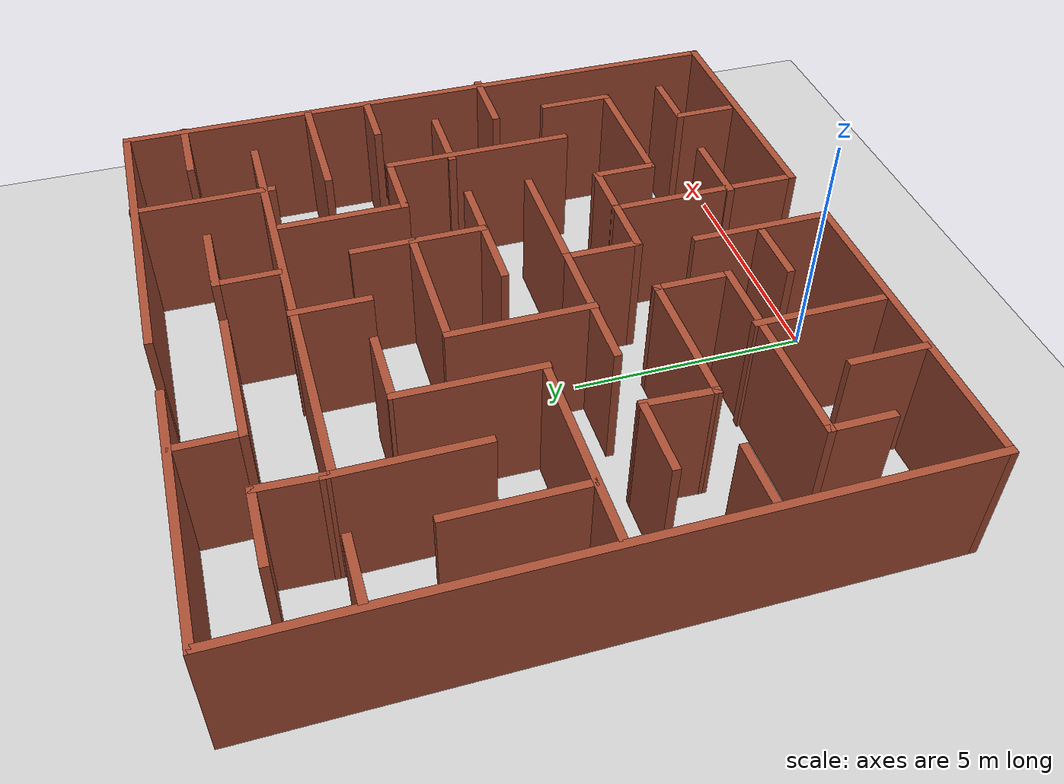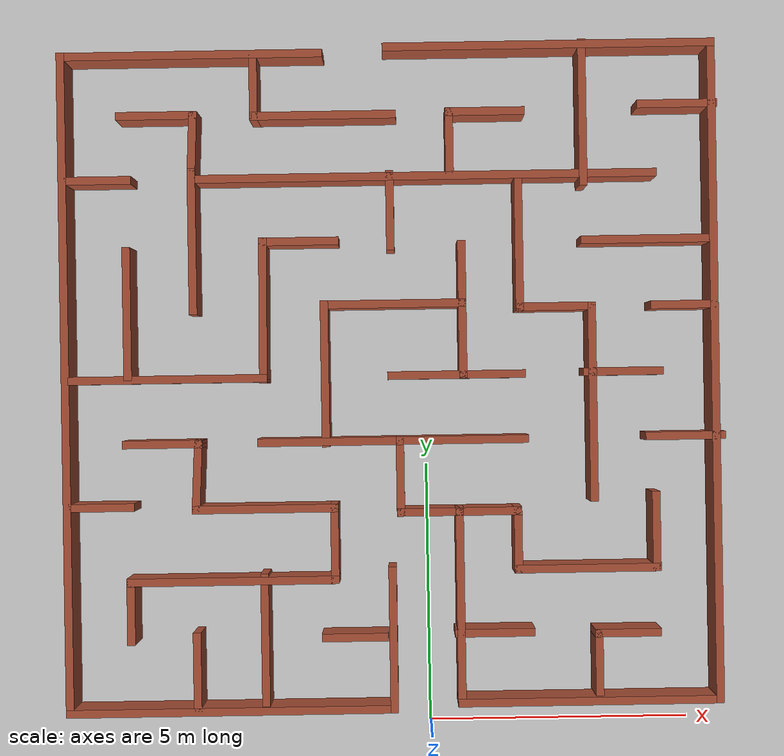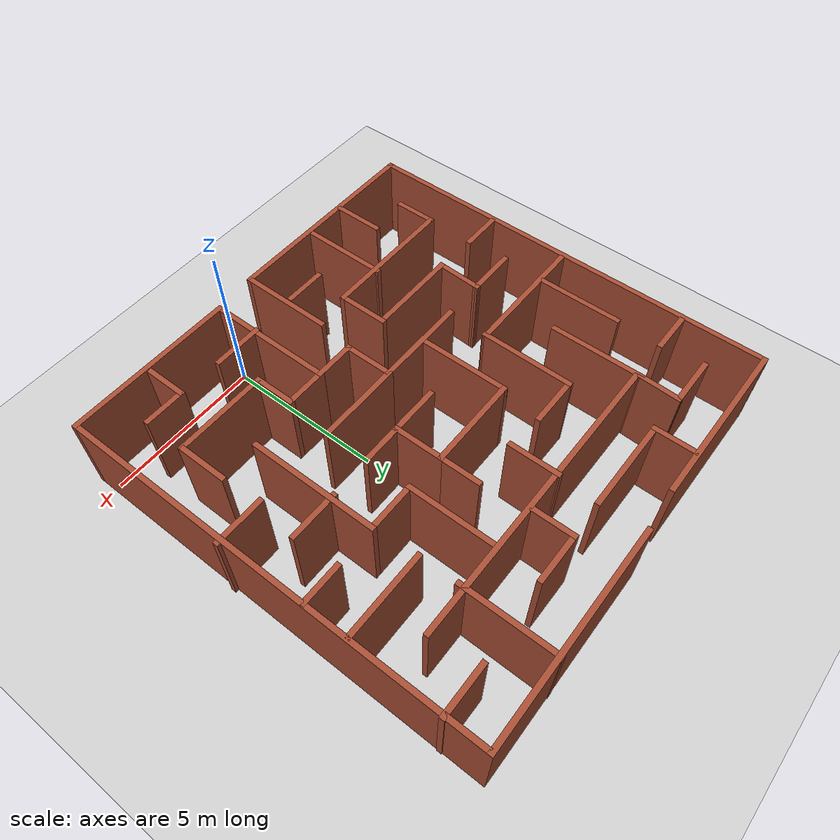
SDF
<sdf version="1.7">
 <world name="maze">
  <light name="sun" type="directional">
   <pose>0 0 10 0 -0 0</pose>
   <diffuse>0.8 0.8 0.8 1</diffuse>
   <specular>0.2 0.2 0.2 1</specular>
   <attenuation>
    <range>1000</range>
    <constant>0.9</constant>
    <linear>0.01</linear>
    <quadratic>0.001</quadratic>
   </attenuation>
   <direction>-0.5 0.1 -0.9</direction>
   <spot><inner_angle>0</inner_angle><outer_angle>0</outer_angle><falloff>0</falloff></spot>
  </light>
  <model name="ground_plane">
   <static>1</static>
   <link name="link">
    <collision name="collision">
     <geometry><plane><normal>0 0 1</normal><size>100 100</size></plane></geometry>
     <surface><friction><ode><mu>100</mu><mu2>50</mu2></ode></friction></surface>
    </collision>
    <visual name="visual">
     <cast_shadows>0</cast_shadows>
     <geometry><plane><normal>0 0 1</normal><size>100 100</size></plane></geometry>
     <material>
      <script><uri>file://media/materials/scripts/gazebo.material</uri><name>Gazebo/Grey</name></script>
     </material>
    </visual>
   </link>
  </model>
  <gravity>0 0 -9.8</gravity>
  <magnetic_field>6e-06 2.3e-05 -4.2e-05</magnetic_field>
  <atmosphere type="adiabatic"/>
  <physics type="ode">
   <max_step_size>0.001</max_step_size>
   <real_time_factor>1</real_time_factor>
   <real_time_update_rate>1000</real_time_update_rate>
  </physics>
  <scene><ambient>0.4 0.4 0.4 1</ambient><background>0.7 0.7 0.7 1</background><shadows>1</shadows></scene>
  <audio><device>default</device></audio>
  <spherical_coordinates>
   <surface_model>EARTH_WGS84</surface_model>
   <latitude_deg>0</latitude_deg>
   <longitude_deg>0</longitude_deg>
   <elevation>0</elevation>
   <heading_deg>0</heading_deg>
  </spherical_coordinates>
  <model name="Maze">
   <pose>-0.631465 6.69394 1.57577 0 -0 0</pose>
   <link name="Wall_1">
    <collision name="Wall_1_Collision">
     <geometry><box><size>6.25 0.15 2.5</size></box></geometry>
     <pose>0 0 1.25 0 -0 0</pose>
    </collision>
    <visual name="Wall_1_Visual">
     <pose>0 0 1.25 0 -0 0</pose>
     <geometry><box><size>6.25 0.15 2.5</size></box></geometry>
     <material>
      <script><uri>file://media/materials/scripts/gazebo.material</uri><name>Gazebo/Bricks</name></script>
      <ambient>1 1 1 1</ambient>
     </material>
     <meta><layer>0</layer></meta>
    </visual>
    <pose>3.01437 6.21424 0 0 -0 0</pose>
   </link>
   <link name="Wall_10">
    <collision name="Wall_10_Collision">
     <geometry><box><size>1.25 0.15 2.5</size></box></geometry>
     <pose>0 0 1.25 0 -0 0</pose>
    </collision>
    <visual name="Wall_10_Visual">
     <pose>0 0 1.25 0 -0 0</pose>
     <geometry><box><size>1.25 0.15 2.5</size></box></geometry>
     <material>
      <script><uri>file://media/materials/scripts/gazebo.material</uri><name>Gazebo/Bricks</name></script>
      <ambient>1 1 1 1</ambient>
     </material>
     <meta><layer>0</layer></meta>
    </visual>
    <pose>-2.54387 5.50241 0 0 -0 -1.5708</pose>
   </link>
   <link name="Wall_11">
    <collision name="Wall_11_Collision">
     <geometry><box><size>2.75 0.15 2.5</size></box></geometry>
     <pose>0 0 1.25 0 -0 0</pose>
    </collision>
    <visual name="Wall_11_Visual">
     <pose>0 0 1.25 0 -0 0</pose>
     <geometry><box><size>2.75 0.15 2.5</size></box></geometry>
     <material>
      <script><uri>file://media/materials/scripts/gazebo.material</uri><name>Gazebo/Bricks</name></script>
      <ambient>1 1 1 1</ambient>
     </material>
     <meta><layer>0</layer></meta>
    </visual>
    <pose>-1.24388 4.95241 0 0 -0 0</pose>
   </link>
   <link name="Wall_13">
    <collision name="Wall_13_Collision">
     <geometry><box><size>1.25 0.15 2.5</size></box></geometry>
     <pose>0 0 1.25 0 -0 0</pose>
    </collision>
    <visual name="Wall_13_Visual">
     <pose>0 0 1.25 0 -0 0</pose>
     <geometry><box><size>1.25 0.15 2.5</size></box></geometry>
     <material>
      <script><uri>file://media/materials/scripts/gazebo.material</uri><name>Gazebo/Bricks</name></script>
      <ambient>1 1 1 1</ambient>
     </material>
     <meta><layer>0</layer></meta>
    </visual>
    <pose>-5.49424 3.7869 0 0 -0 3.14159</pose>
   </link>
   <link name="Wall_17">
    <collision name="Wall_17_Collision">
     <geometry><box><size>1.25 0.15 2.5</size></box></geometry>
     <pose>0 0 1.25 0 -0 0</pose>
    </collision>
    <visual name="Wall_17_Visual">
     <pose>0 0 1.25 0 -0 0</pose>
     <geometry><box><size>1.25 0.15 2.5</size></box></geometry>
     <material>
      <script><uri>file://media/materials/scripts/gazebo.material</uri><name>Gazebo/Bricks</name></script>
      <ambient>1 1 1 1</ambient>
     </material>
     <meta><layer>0</layer></meta>
    </visual>
    <pose>-5.52121 -2.36235 0 0 -0 3.14159</pose>
   </link>
   <link name="Wall_19">
    <collision name="Wall_19_Collision">
     <geometry><box><size>1.5 0.15 2.5</size></box></geometry>
     <pose>0 0 1.25 0 -0 0</pose>
    </collision>
    <visual name="Wall_19_Visual">
     <pose>0 0 1.25 0 -0 0</pose>
     <geometry><box><size>1.5 0.15 2.5</size></box></geometry>
     <material>
      <script><uri>file://media/materials/scripts/gazebo.material</uri><name>Gazebo/Bricks</name></script>
      <ambient>1 1 1 1</ambient>
     </material>
     <meta><layer>0</layer></meta>
    </visual>
    <pose>-3.75754 -5.49165 0 0 -0 -1.5708</pose>
   </link>
   <link name="Wall_2">
    <collision name="Wall_2_Collision">
     <geometry><box><size>12.5 0.15 2.5</size></box></geometry>
     <pose>0 0 1.25 0 -0 0</pose>
    </collision>
    <visual name="Wall_2_Visual">
     <pose>0 0 1.25 0 -0 0</pose>
     <geometry><box><size>12.5 0.15 2.5</size></box></geometry>
     <material>
      <script><uri>file://media/materials/scripts/gazebo.material</uri><name>Gazebo/Bricks</name></script>
      <ambient>1 1 1 1</ambient>
     </material>
     <meta><layer>0</layer></meta>
    </visual>
    <pose>6.06437 0.039235 0 0 -0 -1.5708</pose>
   </link>
   <link name="Wall_21">
    <collision name="Wall_21_Collision">
     <geometry><box><size>1.25 0.15 2.5</size></box></geometry>
     <pose>0 0 1.25 0 -0 0</pose>
    </collision>
    <visual name="Wall_21_Visual">
     <pose>0 0 1.25 0 -0 0</pose>
     <geometry><box><size>1.25 0.15 2.5</size></box></geometry>
     <material>
      <script><uri>file://media/materials/scripts/gazebo.material</uri><name>Gazebo/Bricks</name></script>
      <ambient>1 1 1 1</ambient>
     </material>
     <meta><layer>0</layer></meta>
    </visual>
    <pose>-0.780208 -4.87059 0 0 -0 0</pose>
   </link>
   <link name="Wall_25">
    <collision name="Wall_25_Collision">
     <geometry><box><size>1.25 0.15 2.5</size></box></geometry>
     <pose>0 0 1.25 0 -0 0</pose>
    </collision>
    <visual name="Wall_25_Visual">
     <pose>0 0 1.25 0 -0 0</pose>
     <geometry><box><size>1.25 0.15 2.5</size></box></geometry>
     <material>
      <script><uri>file://media/materials/scripts/gazebo.material</uri><name>Gazebo/Bricks</name></script>
      <ambient>1 1 1 1</ambient>
     </material>
     <meta><layer>0</layer></meta>
    </visual>
    <pose>4.35353 -4.86057 0 0 -0 3.14159</pose>
   </link>
   <link name="Wall_26">
    <collision name="Wall_26_Collision">
     <geometry><box><size>1.25 0.15 2.5</size></box></geometry>
     <pose>0 0 1.25 0 -0 0</pose>
    </collision>
    <visual name="Wall_26_Visual">
     <pose>0 0 1.25 0 -0 0</pose>
     <geometry><box><size>1.25 0.15 2.5</size></box></geometry>
     <material>
      <script><uri>file://media/materials/scripts/gazebo.material</uri><name>Gazebo/Bricks</name></script>
      <ambient>1 1 1 1</ambient>
     </material>
     <meta><layer>0</layer></meta>
    </visual>
    <pose>3.80353 -5.41057 0 0 -0 -1.5708</pose>
   </link>
   <link name="Wall_28">
    <collision name="Wall_28_Collision">
     <geometry><box><size>1.5 0.15 2.5</size></box></geometry>
     <pose>0 0 1.25 0 -0 0</pose>
    </collision>
    <visual name="Wall_28_Visual">
     <pose>0 0 1.25 0 -0 0</pose>
     <geometry><box><size>1.5 0.15 2.5</size></box></geometry>
     <material>
      <script><uri>file://media/materials/scripts/gazebo.material</uri><name>Gazebo/Bricks</name></script>
      <ambient>1 1 1 1</ambient>
     </material>
     <meta><layer>0</layer></meta>
    </visual>
    <pose>5.4876 -1.17201 0 0 -0 3.14159</pose>
   </link>
   <link name="Wall_3">
    <collision name="Wall_3_Collision">
     <geometry><box><size>5 0.15 2.5</size></box></geometry>
     <pose>0 0 1.25 0 -0 0</pose>
    </collision>
    <visual name="Wall_3_Visual">
     <pose>0 0 1.25 0 -0 0</pose>
     <geometry><box><size>5 0.15 2.5</size></box></geometry>
     <material>
      <script><uri>file://media/materials/scripts/gazebo.material</uri><name>Gazebo/Bricks</name></script>
      <ambient>1 1 1 1</ambient>
     </material>
     <meta><layer>0</layer></meta>
    </visual>
    <pose>3.63937 -6.13577 0 0 -0 3.14159</pose>
   </link>
   <link name="Wall_30">
    <collision name="Wall_30_Collision">
     <geometry><box><size>1.25 0.15 2.5</size></box></geometry>
     <pose>0 0 1.25 0 -0 0</pose>
    </collision>
    <visual name="Wall_30_Visual">
     <pose>0 0 1.25 0 -0 0</pose>
     <geometry><box><size>1.25 0.15 2.5</size></box></geometry>
     <material>
      <script><uri>file://media/materials/scripts/gazebo.material</uri><name>Gazebo/Bricks</name></script>
      <ambient>1 1 1 1</ambient>
     </material>
     <meta><layer>0</layer></meta>
    </visual>
    <pose>5.48847 1.29295 0 0 -0 3.14159</pose>
   </link>
   <link name="Wall_32">
    <collision name="Wall_32_Collision">
     <geometry><box><size>2.5 0.15 2.5</size></box></geometry>
     <pose>0 0 1.25 0 -0 0</pose>
    </collision>
    <visual name="Wall_32_Visual">
     <pose>0 0 1.25 0 -0 0</pose>
     <geometry><box><size>2.5 0.15 2.5</size></box></geometry>
     <material>
      <script><uri>file://media/materials/scripts/gazebo.material</uri><name>Gazebo/Bricks</name></script>
      <ambient>1 1 1 1</ambient>
     </material>
     <meta><layer>0</layer></meta>
    </visual>
    <pose>4.828 2.53429 0 0 -0 3.14159</pose>
   </link>
   <link name="Wall_34">
    <collision name="Wall_34_Collision">
     <geometry><box><size>1.5 0.15 2.5</size></box></geometry>
     <pose>0 0 1.25 0 -0 0</pose>
    </collision>
    <visual name="Wall_34_Visual">
     <pose>0 0 1.25 0 -0 0</pose>
     <geometry><box><size>1.5 0.15 2.5</size></box></geometry>
     <material>
      <script><uri>file://media/materials/scripts/gazebo.material</uri><name>Gazebo/Bricks</name></script>
      <ambient>1 1 1 1</ambient>
     </material>
     <meta><layer>0</layer></meta>
    </visual>
    <pose>5.41624 5.07023 0 0 -0 3.14159</pose>
   </link>
   <link name="Wall_36">
    <collision name="Wall_36_Collision">
     <geometry><box><size>2.75 0.15 2.5</size></box></geometry>
     <pose>0 0 1.25 0 -0 0</pose>
    </collision>
    <visual name="Wall_36_Visual">
     <pose>0 0 1.25 0 -0 0</pose>
     <geometry><box><size>2.75 0.15 2.5</size></box></geometry>
     <material>
      <script><uri>file://media/materials/scripts/gazebo.material</uri><name>Gazebo/Bricks</name></script>
      <ambient>1 1 1 1</ambient>
     </material>
     <meta><layer>0</layer></meta>
    </visual>
    <pose>3.63693 4.92996 0 0 -0 -1.5708</pose>
   </link>
   <link name="Wall_39">
    <collision name="Wall_39_Collision">
     <geometry><box><size>1.25 0.15 2.5</size></box></geometry>
     <pose>0 0 1.25 0 -0 0</pose>
    </collision>
    <visual name="Wall_39_Visual">
     <pose>0 0 1.25 0 -0 0</pose>
     <geometry><box><size>1.25 0.15 2.5</size></box></geometry>
     <material>
      <script><uri>file://media/materials/scripts/gazebo.material</uri><name>Gazebo/Bricks</name></script>
      <ambient>1 1 1 1</ambient>
     </material>
     <meta><layer>0</layer></meta>
    </visual>
    <pose>-3.71188 4.4394 0 0 -0 1.52818</pose>
   </link>
   <link name="Wall_40">
    <collision name="Wall_40_Collision">
     <geometry><box><size>1.5 0.15 2.5</size></box></geometry>
     <pose>0 0 1.25 0 -0 0</pose>
    </collision>
    <visual name="Wall_40_Visual">
     <pose>0 0 1.25 0 -0 0</pose>
     <geometry><box><size>1.5 0.15 2.5</size></box></geometry>
     <material>
      <script><uri>file://media/materials/scripts/gazebo.material</uri><name>Gazebo/Bricks</name></script>
      <ambient>1 1 1 1</ambient>
     </material>
     <meta><layer>0</layer></meta>
    </visual>
    <pose>-4.38688 4.9894 0 0 -0 3.14159</pose>
   </link>
   <link name="Wall_42">
    <collision name="Wall_42_Collision">
     <geometry><box><size>2.75 0.15 2.5</size></box></geometry>
     <pose>0 0 1.25 0 -0 0</pose>
    </collision>
    <visual name="Wall_42_Visual">
     <pose>0 0 1.25 0 -0 0</pose>
     <geometry><box><size>2.75 0.15 2.5</size></box></geometry>
     <material>
      <script><uri>file://media/materials/scripts/gazebo.material</uri><name>Gazebo/Bricks</name></script>
      <ambient>1 1 1 1</ambient>
     </material>
     <meta><layer>0</layer></meta>
    </visual>
    <pose>-3.73533 2.61285 0 0 -0 -1.5708</pose>
   </link>
   <link name="Wall_44">
    <collision name="Wall_44_Collision">
     <geometry><box><size>2.5 0.15 2.5</size></box></geometry>
     <pose>0 0 1.25 0 -0 0</pose>
    </collision>
    <visual name="Wall_44_Visual">
     <pose>0 0 1.25 0 -0 0</pose>
     <geometry><box><size>2.5 0.15 2.5</size></box></geometry>
     <material>
      <script><uri>file://media/materials/scripts/gazebo.material</uri><name>Gazebo/Bricks</name></script>
      <ambient>1 1 1 1</ambient>
     </material>
     <meta><layer>0</layer></meta>
    </visual>
    <pose>-4.98304 1.27324 0 0 -0 -1.5708</pose>
   </link>
   <link name="Wall_46">
    <collision name="Wall_46_Collision">
     <geometry><box><size>3.75 0.15 2.5</size></box></geometry>
     <pose>0 0 1.25 0 -0 0</pose>
    </collision>
    <visual name="Wall_46_Visual">
     <pose>0 0 1.25 0 -0 0</pose>
     <geometry><box><size>3.75 0.15 2.5</size></box></geometry>
     <material>
      <script><uri>file://media/materials/scripts/gazebo.material</uri><name>Gazebo/Bricks</name></script>
      <ambient>1 1 1 1</ambient>
     </material>
     <meta><layer>0</layer></meta>
    </visual>
    <pose>-4.23613 0.027882 0 0 -0 0</pose>
   </link>
   <link name="Wall_47">
    <collision name="Wall_47_Collision">
     <geometry><box><size>2.73463 0.15 2.5</size></box></geometry>
     <pose>0 0 1.25 0 -0 0</pose>
    </collision>
    <visual name="Wall_47_Visual">
     <pose>0 0 1.25 0 -0 0</pose>
     <geometry><box><size>2.73463 0.15 2.5</size></box></geometry>
     <material>
      <script><uri>file://media/materials/scripts/gazebo.material</uri><name>Gazebo/Bricks</name></script>
      <ambient>1 1 1 1</ambient>
     </material>
     <meta><layer>0</layer></meta>
    </visual>
    <pose>-2.42441 1.29669 0 0 -0 1.56172</pose>
   </link>
   <link name="Wall_48">
    <collision name="Wall_48_Collision">
     <geometry><box><size>1.5 0.15 2.5</size></box></geometry>
     <pose>0 0 1.25 0 -0 0</pose>
    </collision>
    <visual name="Wall_48_Visual">
     <pose>0 0 1.25 0 -0 0</pose>
     <geometry><box><size>1.5 0.15 2.5</size></box></geometry>
     <material>
      <script><uri>file://media/materials/scripts/gazebo.material</uri><name>Gazebo/Bricks</name></script>
      <ambient>1 1 1 1</ambient>
     </material>
     <meta><layer>0</layer></meta>
    </visual>
    <pose>-1.73768 2.58895 0 0 -0 0</pose>
   </link>
   <link name="Wall_5">
    <collision name="Wall_5_Collision">
     <geometry><box><size>2.75 0.15 2.5</size></box></geometry>
     <pose>0 0 1.25 0 -0 0</pose>
    </collision>
    <visual name="Wall_5_Visual">
     <pose>0 0 1.25 0 -0 0</pose>
     <geometry><box><size>2.75 0.15 2.5</size></box></geometry>
     <material>
      <script><uri>file://media/materials/scripts/gazebo.material</uri><name>Gazebo/Bricks</name></script>
      <ambient>1 1 1 1</ambient>
     </material>
     <meta><layer>0</layer></meta>
    </visual>
    <pose>-0.0626 -4.92996 0 0 -0 -1.5708</pose>
   </link>
   <link name="Wall_50">
    <collision name="Wall_50_Collision">
     <geometry><box><size>8.75 0.15 2.5</size></box></geometry>
     <pose>0 0 1.25 0 -0 0</pose>
    </collision>
    <visual name="Wall_50_Visual">
     <pose>0 0 1.25 0 -0 0</pose>
     <geometry><box><size>8.75 0.15 2.5</size></box></geometry>
     <material>
      <script><uri>file://media/materials/scripts/gazebo.material</uri><name>Gazebo/Bricks</name></script>
      <ambient>1 1 1 1</ambient>
     </material>
     <meta><layer>0</layer></meta>
    </visual>
    <pose>0.639917 3.78399 0 0 -0 3.14159</pose>
   </link>
   <link name="Wall_52">
    <collision name="Wall_52_Collision">
     <geometry><box><size>1.5 0.15 2.5</size></box></geometry>
     <pose>0 0 1.25 0 -0 0</pose>
    </collision>
    <visual name="Wall_52_Visual">
     <pose>0 0 1.25 0 -0 0</pose>
     <geometry><box><size>1.5 0.15 2.5</size></box></geometry>
     <material>
      <script><uri>file://media/materials/scripts/gazebo.material</uri><name>Gazebo/Bricks</name></script>
      <ambient>1 1 1 1</ambient>
     </material>
     <meta><layer>0</layer></meta>
    </visual>
    <pose>-0.008563 3.14565 0 0 -0 1.5708</pose>
   </link>
   <link name="Wall_54">
    <collision name="Wall_54_Collision">
     <geometry><box><size>1.5 0.15 2.5</size></box></geometry>
     <pose>0 0 1.25 0 -0 0</pose>
    </collision>
    <visual name="Wall_54_Visual">
     <pose>0 0 1.25 0 -0 0</pose>
     <geometry><box><size>1.5 0.15 2.5</size></box></geometry>
     <material>
      <script><uri>file://media/materials/scripts/gazebo.material</uri><name>Gazebo/Bricks</name></script>
      <ambient>1 1 1 1</ambient>
     </material>
     <meta><layer>0</layer></meta>
    </visual>
    <pose>1.8024 4.98006 0 0 -0 3.14159</pose>
   </link>
   <link name="Wall_55">
    <collision name="Wall_55_Collision">
     <geometry><box><size>1.25 0.15 2.5</size></box></geometry>
     <pose>0 0 1.25 0 -0 0</pose>
    </collision>
    <visual name="Wall_55_Visual">
     <pose>0 0 1.25 0 -0 0</pose>
     <geometry><box><size>1.25 0.15 2.5</size></box></geometry>
     <material>
      <script><uri>file://media/materials/scripts/gazebo.material</uri><name>Gazebo/Bricks</name></script>
      <ambient>1 1 1 1</ambient>
     </material>
     <meta><layer>0</layer></meta>
    </visual>
    <pose>1.1274 4.43006 0 0 -0 -1.5708</pose>
   </link>
   <link name="Wall_57">
    <collision name="Wall_57_Collision">
     <geometry><box><size>1.5 0.15 2.5</size></box></geometry>
     <pose>0 0 1.25 0 -0 0</pose>
    </collision>
    <visual name="Wall_57_Visual">
     <pose>0 0 1.25 0 -0 0</pose>
     <geometry><box><size>1.5 0.15 2.5</size></box></geometry>
     <material>
      <script><uri>file://media/materials/scripts/gazebo.material</uri><name>Gazebo/Bricks</name></script>
      <ambient>1 1 1 1</ambient>
     </material>
     <meta><layer>0</layer></meta>
    </visual>
    <pose>-4.3524 -1.18795 0 0 -0 0</pose>
   </link>
   <link name="Wall_6">
    <collision name="Wall_6_Collision">
     <geometry><box><size>6.25 0.15 2.5</size></box></geometry>
     <pose>0 0 1.25 0 -0 0</pose>
    </collision>
    <visual name="Wall_6_Visual">
     <pose>0 0 1.25 0 -0 0</pose>
     <geometry><box><size>6.25 0.15 2.5</size></box></geometry>
     <material>
      <script><uri>file://media/materials/scripts/gazebo.material</uri><name>Gazebo/Bricks</name></script>
      <ambient>1 1 1 1</ambient>
     </material>
     <meta><layer>0</layer></meta>
    </visual>
    <pose>-3.1126 -6.22996 0 0 -0 3.14159</pose>
   </link>
   <link name="Wall_61">
    <collision name="Wall_61_Collision">
     <geometry><box><size>1.39444 0.15 2.5</size></box></geometry>
     <pose>0 0 1.25 0 -0 0</pose>
    </collision>
    <visual name="Wall_61_Visual">
     <pose>0 0 1.25 0 -0 0</pose>
     <geometry><box><size>1.39444 0.15 2.5</size></box></geometry>
     <material>
      <script><uri>file://media/materials/scripts/gazebo.material</uri><name>Gazebo/Bricks</name></script>
      <ambient>1 1 1 1</ambient>
     </material>
     <meta><layer>0</layer></meta>
    </visual>
    <pose>-3.70746 -1.80944 0 0 -0 1.52247</pose>
   </link>
   <link name="Wall_63">
    <collision name="Wall_63_Collision">
     <geometry><box><size>2.75 0.15 2.5</size></box></geometry>
     <pose>0 0 1.25 0 -0 0</pose>
    </collision>
    <visual name="Wall_63_Visual">
     <pose>0 0 1.25 0 -0 0</pose>
     <geometry><box><size>2.75 0.15 2.5</size></box></geometry>
     <material>
      <script><uri>file://media/materials/scripts/gazebo.material</uri><name>Gazebo/Bricks</name></script>
      <ambient>1 1 1 1</ambient>
     </material>
     <meta><layer>0</layer></meta>
    </visual>
    <pose>-2.43751 -2.43093 0 0 -0 0</pose>
   </link>
   <link name="Wall_64">
    <collision name="Wall_64_Collision">
     <geometry><box><size>1.5 0.15 2.5</size></box></geometry>
     <pose>0 0 1.25 0 -0 0</pose>
    </collision>
    <visual name="Wall_64_Visual">
     <pose>0 0 1.25 0 -0 0</pose>
     <geometry><box><size>1.5 0.15 2.5</size></box></geometry>
     <material>
      <script><uri>file://media/materials/scripts/gazebo.material</uri><name>Gazebo/Bricks</name></script>
      <ambient>1 1 1 1</ambient>
     </material>
     <meta><layer>0</layer></meta>
    </visual>
    <pose>-1.13751 -3.10593 0 0 -0 -1.5708</pose>
   </link>
   <link name="Wall_65">
    <collision name="Wall_65_Collision">
     <geometry><box><size>4 0.15 2.5</size></box></geometry>
     <pose>0 0 1.25 0 -0 0</pose>
    </collision>
    <visual name="Wall_65_Visual">
     <pose>0 0 1.25 0 -0 0</pose>
     <geometry><box><size>4 0.15 2.5</size></box></geometry>
     <material>
      <script><uri>file://media/materials/scripts/gazebo.material</uri><name>Gazebo/Bricks</name></script>
      <ambient>1 1 1 1</ambient>
     </material>
     <meta><layer>0</layer></meta>
    </visual>
    <pose>-3.06251 -3.78093 0 0 -0 3.14159</pose>
   </link>
   <link name="Wall_66">
    <collision name="Wall_66_Collision">
     <geometry><box><size>1.25 0.15 2.5</size></box></geometry>
     <pose>0 0 1.25 0 -0 0</pose>
    </collision>
    <visual name="Wall_66_Visual">
     <pose>0 0 1.25 0 -0 0</pose>
     <geometry><box><size>1.25 0.15 2.5</size></box></geometry>
     <material>
      <script><uri>file://media/materials/scripts/gazebo.material</uri><name>Gazebo/Bricks</name></script>
      <ambient>1 1 1 1</ambient>
     </material>
     <meta><layer>0</layer></meta>
    </visual>
    <pose>-4.98751 -4.33093 0 0 -0 -1.5708</pose>
   </link>
   <link name="Wall_68">
    <collision name="Wall_68_Collision">
     <geometry><box><size>2.5 0.15 2.5</size></box></geometry>
     <pose>0 0 1.25 0 -0 0</pose>
    </collision>
    <visual name="Wall_68_Visual">
     <pose>0 0 1.25 0 -0 0</pose>
     <geometry><box><size>2.5 0.15 2.5</size></box></geometry>
     <material>
      <script><uri>file://media/materials/scripts/gazebo.material</uri><name>Gazebo/Bricks</name></script>
      <ambient>1 1 1 1</ambient>
     </material>
     <meta><layer>0</layer></meta>
    </visual>
    <pose>-2.47108 -4.89582 0 0 -0 -1.5708</pose>
   </link>
   <link name="Wall_7">
    <collision name="Wall_7_Collision">
     <geometry><box><size>12.5 0.15 2.5</size></box></geometry>
     <pose>0 0 1.25 0 -0 0</pose>
    </collision>
    <visual name="Wall_7_Visual">
     <pose>0 0 1.25 0 -0 0</pose>
     <geometry><box><size>12.5 0.15 2.5</size></box></geometry>
     <material>
      <script><uri>file://media/materials/scripts/gazebo.material</uri><name>Gazebo/Bricks</name></script>
      <ambient>1 1 1 1</ambient>
     </material>
     <meta><layer>0</layer></meta>
    </visual>
    <pose>-6.1626 -0.054956 0 0 -0 1.5708</pose>
   </link>
   <link name="Wall_70">
    <collision name="Wall_70_Collision">
     <geometry><box><size>2.5 0.15 2.5</size></box></geometry>
     <pose>0 0 1.25 0 -0 0</pose>
    </collision>
    <visual name="Wall_70_Visual">
     <pose>0 0 1.25 0 -0 0</pose>
     <geometry><box><size>2.5 0.15 2.5</size></box></geometry>
     <material>
      <script><uri>file://media/materials/scripts/gazebo.material</uri><name>Gazebo/Bricks</name></script>
      <ambient>1 1 1 1</ambient>
     </material>
     <meta><layer>0</layer></meta>
    </visual>
    <pose>2.40705 2.46827 0 0 -0 -1.5708</pose>
   </link>
   <link name="Wall_71">
    <collision name="Wall_71_Collision">
     <geometry><box><size>1.5 0.15 2.5</size></box></geometry>
     <pose>0 0 1.25 0 -0 0</pose>
    </collision>
    <visual name="Wall_71_Visual">
     <pose>0 0 1.25 0 -0 0</pose>
     <geometry><box><size>1.5 0.15 2.5</size></box></geometry>
     <material>
      <script><uri>file://media/materials/scripts/gazebo.material</uri><name>Gazebo/Bricks</name></script>
      <ambient>1 1 1 1</ambient>
     </material>
     <meta><layer>0</layer></meta>
    </visual>
    <pose>3.08205 1.29327 0 0 -0 0</pose>
   </link>
   <link name="Wall_72">
    <collision name="Wall_72_Collision">
     <geometry><box><size>3.75 0.15 2.5</size></box></geometry>
     <pose>0 0 1.25 0 -0 0</pose>
    </collision>
    <visual name="Wall_72_Visual">
     <pose>0 0 1.25 0 -0 0</pose>
     <geometry><box><size>3.75 0.15 2.5</size></box></geometry>
     <material>
      <script><uri>file://media/materials/scripts/gazebo.material</uri><name>Gazebo/Bricks</name></script>
      <ambient>1 1 1 1</ambient>
     </material>
     <meta><layer>0</layer></meta>
    </visual>
    <pose>3.75705 -0.506728 0 0 -0 -1.5708</pose>
   </link>
   <link name="Wall_74">
    <collision name="Wall_74_Collision">
     <geometry><box><size>1.5 0.15 2.5</size></box></geometry>
     <pose>0 0 1.25 0 -0 0</pose>
    </collision>
    <visual name="Wall_74_Visual">
     <pose>0 0 1.25 0 -0 0</pose>
     <geometry><box><size>1.5 0.15 2.5</size></box></geometry>
     <material>
      <script><uri>file://media/materials/scripts/gazebo.material</uri><name>Gazebo/Bricks</name></script>
      <ambient>1 1 1 1</ambient>
     </material>
     <meta><layer>0</layer></meta>
    </visual>
    <pose>4.33527 0.055038 0 0 -0 3.14159</pose>
   </link>
   <link name="Wall_76">
    <collision name="Wall_76_Collision">
     <geometry><box><size>3.75 0.15 2.5</size></box></geometry>
     <pose>0 0 1.25 0 -0 0</pose>
    </collision>
    <visual name="Wall_76_Visual">
     <pose>0 0 1.25 0 -0 0</pose>
     <geometry><box><size>3.75 0.15 2.5</size></box></geometry>
     <material>
      <script><uri>file://media/materials/scripts/gazebo.material</uri><name>Gazebo/Bricks</name></script>
      <ambient>1 1 1 1</ambient>
     </material>
     <meta><layer>0</layer></meta>
    </visual>
    <pose>1.21437 -4.33577 0 0 -0 1.5708</pose>
   </link>
   <link name="Wall_77">
    <collision name="Wall_77_Collision">
     <geometry><box><size>1.25 0.15 2.5</size></box></geometry>
     <pose>0 0 1.25 0 -0 0</pose>
    </collision>
    <visual name="Wall_77_Visual">
     <pose>0 0 1.25 0 -0 0</pose>
     <geometry><box><size>1.25 0.15 2.5</size></box></geometry>
     <material>
      <script><uri>file://media/materials/scripts/gazebo.material</uri><name>Gazebo/Bricks</name></script>
      <ambient>1 1 1 1</ambient>
     </material>
     <meta><layer>0</layer></meta>
    </visual>
    <pose>1.76437 -2.53577 0 0 -0 0</pose>
   </link>
   <link name="Wall_78">
    <collision name="Wall_78_Collision">
     <geometry><box><size>1.25 0.15 2.5</size></box></geometry>
     <pose>0 0 1.25 0 -0 0</pose>
    </collision>
    <visual name="Wall_78_Visual">
     <pose>0 0 1.25 0 -0 0</pose>
     <geometry><box><size>1.25 0.15 2.5</size></box></geometry>
     <material>
      <script><uri>file://media/materials/scripts/gazebo.material</uri><name>Gazebo/Bricks</name></script>
      <ambient>1 1 1 1</ambient>
     </material>
     <meta><layer>0</layer></meta>
    </visual>
    <pose>2.31437 -3.08576 0 0 -0 -1.5708</pose>
   </link>
   <link name="Wall_79">
    <collision name="Wall_79_Collision">
     <geometry><box><size>2.75 0.15 2.5</size></box></geometry>
     <pose>0 0 1.25 0 -0 0</pose>
    </collision>
    <visual name="Wall_79_Visual">
     <pose>0 0 1.25 0 -0 0</pose>
     <geometry><box><size>2.75 0.15 2.5</size></box></geometry>
     <material>
      <script><uri>file://media/materials/scripts/gazebo.material</uri><name>Gazebo/Bricks</name></script>
      <ambient>1 1 1 1</ambient>
     </material>
     <meta><layer>0</layer></meta>
    </visual>
    <pose>3.61437 -3.63577 0 0 -0 0</pose>
   </link>
   <link name="Wall_8">
    <collision name="Wall_8_Collision">
     <geometry><box><size>5 0.15 2.5</size></box></geometry>
     <pose>0 0 1.25 0 -0 0</pose>
    </collision>
    <visual name="Wall_8_Visual">
     <pose>0 0 1.25 0 -0 0</pose>
     <geometry><box><size>5 0.15 2.5</size></box></geometry>
     <material>
      <script><uri>file://media/materials/scripts/gazebo.material</uri><name>Gazebo/Bricks</name></script>
      <ambient>1 1 1 1</ambient>
     </material>
     <meta><layer>0</layer></meta>
    </visual>
    <pose>-3.7376 6.12004 0 0 -0 0</pose>
   </link>
   <link name="Wall_80">
    <collision name="Wall_80_Collision">
     <geometry><box><size>1.5 0.15 2.5</size></box></geometry>
     <pose>0 0 1.25 0 -0 0</pose>
    </collision>
    <visual name="Wall_80_Visual">
     <pose>0 0 1.25 0 -0 0</pose>
     <geometry><box><size>1.5 0.15 2.5</size></box></geometry>
     <material>
      <script><uri>file://media/materials/scripts/gazebo.material</uri><name>Gazebo/Bricks</name></script>
      <ambient>1 1 1 1</ambient>
     </material>
     <meta><layer>0</layer></meta>
    </visual>
    <pose>4.91437 -2.96076 0 0 -0 1.5708</pose>
   </link>
   <link name="Wall_82">
    <collision name="Wall_82_Collision">
     <geometry><box><size>1.5 0.15 2.5</size></box></geometry>
     <pose>0 0 1.25 0 -0 0</pose>
    </collision>
    <visual name="Wall_82_Visual">
     <pose>0 0 1.25 0 -0 0</pose>
     <geometry><box><size>1.5 0.15 2.5</size></box></geometry>
     <material>
      <script><uri>file://media/materials/scripts/gazebo.material</uri><name>Gazebo/Bricks</name></script>
      <ambient>1 1 1 1</ambient>
     </material>
     <meta><layer>0</layer></meta>
    </visual>
    <pose>1.84931 -4.82308 0 0 -0 3.14159</pose>
   </link>
   <link name="Wall_84">
    <collision name="Wall_84_Collision">
     <geometry><box><size>1.25 0.15 2.5</size></box></geometry>
     <pose>0 0 1.25 0 -0 0</pose>
    </collision>
    <visual name="Wall_84_Visual">
     <pose>0 0 1.25 0 -0 0</pose>
     <geometry><box><size>1.25 0.15 2.5</size></box></geometry>
     <material>
      <script><uri>file://media/materials/scripts/gazebo.material</uri><name>Gazebo/Bricks</name></script>
      <ambient>1 1 1 1</ambient>
     </material>
     <meta><layer>0</layer></meta>
    </visual>
    <pose>0.66437 -2.53577 0 0 -0 3.14159</pose>
   </link>
   <link name="Wall_85">
    <collision name="Wall_85_Collision">
     <geometry><box><size>1.5 0.15 2.5</size></box></geometry>
     <pose>0 0 1.25 0 -0 0</pose>
    </collision>
    <visual name="Wall_85_Visual">
     <pose>0 0 1.25 0 -0 0</pose>
     <geometry><box><size>1.5 0.15 2.5</size></box></geometry>
     <material>
      <script><uri>file://media/materials/scripts/gazebo.material</uri><name>Gazebo/Bricks</name></script>
      <ambient>1 1 1 1</ambient>
     </material>
     <meta><layer>0</layer></meta>
    </visual>
    <pose>0.11437 -1.86077 0 0 -0 1.5708</pose>
   </link>
   <link name="Wall_86">
    <collision name="Wall_86_Collision">
     <geometry><box><size>2.5 0.15 2.5</size></box></geometry>
     <pose>0 0 1.25 0 -0 0</pose>
    </collision>
    <visual name="Wall_86_Visual">
     <pose>0 0 1.25 0 -0 0</pose>
     <geometry><box><size>2.5 0.15 2.5</size></box></geometry>
     <material>
      <script><uri>file://media/materials/scripts/gazebo.material</uri><name>Gazebo/Bricks</name></script>
      <ambient>1 1 1 1</ambient>
     </material>
     <meta><layer>0</layer></meta>
    </visual>
    <pose>1.28937 -1.18576 0 0 -0 0</pose>
   </link>
   <link name="Wall_88">
    <collision name="Wall_88_Collision">
     <geometry><box><size>2.75 0.15 2.5</size></box></geometry>
     <pose>0 0 1.25 0 -0 0</pose>
    </collision>
    <visual name="Wall_88_Visual">
     <pose>0 0 1.25 0 -0 0</pose>
     <geometry><box><size>2.75 0.15 2.5</size></box></geometry>
     <material>
      <script><uri>file://media/materials/scripts/gazebo.material</uri><name>Gazebo/Bricks</name></script>
      <ambient>1 1 1 1</ambient>
     </material>
     <meta><layer>0</layer></meta>
    </visual>
    <pose>-1.18563 -1.18576 0 0 -0 3.14159</pose>
   </link>
   <link name="Wall_90">
    <collision name="Wall_90_Collision">
     <geometry><box><size>2.75 0.15 2.5</size></box></geometry>
     <pose>0 0 1.25 0 -0 0</pose>
    </collision>
    <visual name="Wall_90_Visual">
     <pose>0 0 1.25 0 -0 0</pose>
     <geometry><box><size>2.75 0.15 2.5</size></box></geometry>
     <material>
      <script><uri>file://media/materials/scripts/gazebo.material</uri><name>Gazebo/Bricks</name></script>
      <ambient>1 1 1 1</ambient>
     </material>
     <meta><layer>0</layer></meta>
    </visual>
    <pose>-1.275 0.088602 0 0 -0 1.5708</pose>
   </link>
   <link name="Wall_91">
    <collision name="Wall_91_Collision">
     <geometry><box><size>2.75 0.15 2.5</size></box></geometry>
     <pose>0 0 1.25 0 -0 0</pose>
    </collision>
    <visual name="Wall_91_Visual">
     <pose>0 0 1.25 0 -0 0</pose>
     <geometry><box><size>2.75 0.15 2.5</size></box></geometry>
     <material>
      <script><uri>file://media/materials/scripts/gazebo.material</uri><name>Gazebo/Bricks</name></script>
      <ambient>1 1 1 1</ambient>
     </material>
     <meta><layer>0</layer></meta>
    </visual>
    <pose>0.025002 1.3886 0 0 -0 0</pose>
   </link>
   <link name="Wall_92">
    <collision name="Wall_92_Collision">
     <geometry><box><size>1.25 0.15 2.5</size></box></geometry>
     <pose>0 0 1.25 0 -0 0</pose>
    </collision>
    <visual name="Wall_92_Visual">
     <pose>0 0 1.25 0 -0 0</pose>
     <geometry><box><size>1.25 0.15 2.5</size></box></geometry>
     <material>
      <script><uri>file://media/materials/scripts/gazebo.material</uri><name>Gazebo/Bricks</name></script>
      <ambient>1 1 1 1</ambient>
     </material>
     <meta><layer>0</layer></meta>
    </visual>
    <pose>1.325 1.9386 0 0 -0 1.5708</pose>
   </link>
   <link name="Wall_94">
    <collision name="Wall_94_Collision">
     <geometry><box><size>1.5 0.15 2.5</size></box></geometry>
     <pose>0 0 1.25 0 -0 0</pose>
    </collision>
    <visual name="Wall_94_Visual">
     <pose>0 0 1.25 0 -0 0</pose>
     <geometry><box><size>1.5 0.15 2.5</size></box></geometry>
     <material>
      <script><uri>file://media/materials/scripts/gazebo.material</uri><name>Gazebo/Bricks</name></script>
      <ambient>1 1 1 1</ambient>
     </material>
     <meta><layer>0</layer></meta>
    </visual>
    <pose>1.325 0.713602 0 0 -0 -1.5708</pose>
   </link>
   <link name="Wall_95">
    <collision name="Wall_95_Collision">
     <geometry><box><size>1.25 0.15 2.5</size></box></geometry>
     <pose>0 0 1.25 0 -0 0</pose>
    </collision>
    <visual name="Wall_95_Visual">
     <pose>0 0 1.25 0 -0 0</pose>
     <geometry><box><size>1.25 0.15 2.5</size></box></geometry>
     <material>
      <script><uri>file://media/materials/scripts/gazebo.material</uri><name>Gazebo/Bricks</name></script>
      <ambient>1 1 1 1</ambient>
     </material>
     <meta><layer>0</layer></meta>
    </visual>
    <pose>1.875 0.038602 0 0 -0 0</pose>
   </link>
   <link name="Wall_97">
    <collision name="Wall_97_Collision">
     <geometry><box><size>1.5 0.15 2.5</size></box></geometry>
     <pose>0 0 1.25 0 -0 0</pose>
    </collision>
    <visual name="Wall_97_Visual">
     <pose>0 0 1.25 0 -0 0</pose>
     <geometry><box><size>1.5 0.15 2.5</size></box></geometry>
     <material>
      <script><uri>file://media/materials/scripts/gazebo.material</uri><name>Gazebo/Bricks</name></script>
      <ambient>1 1 1 1</ambient>
     </material>
     <meta><layer>0</layer></meta>
    </visual>
    <pose>0.650002 0.038602 0 0 -0 3.14159</pose>
   </link>
   <static>1</static>
  </model>
 </world>
</sdf>
